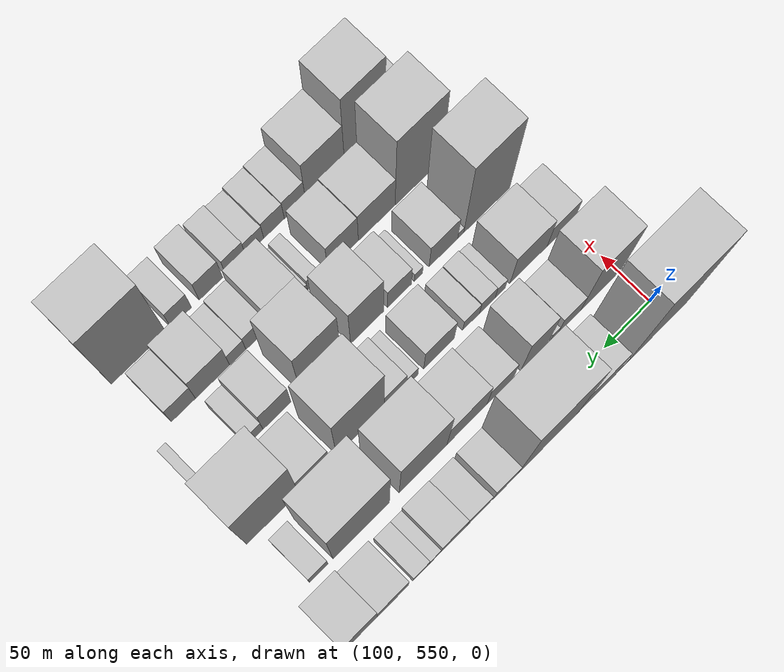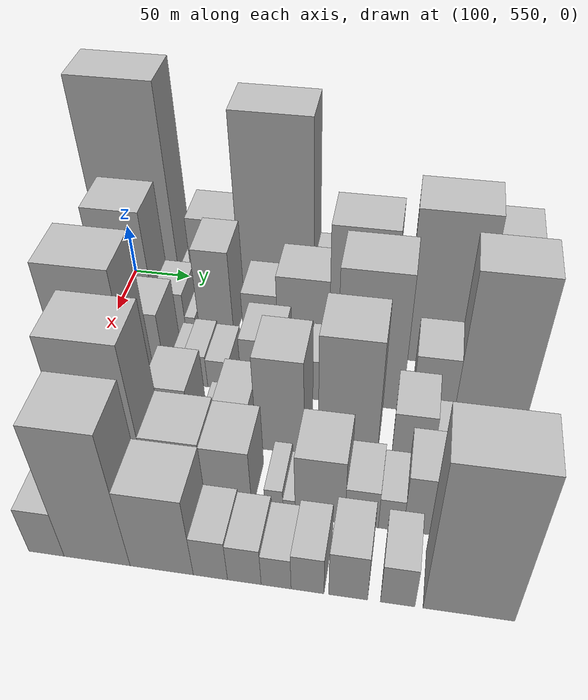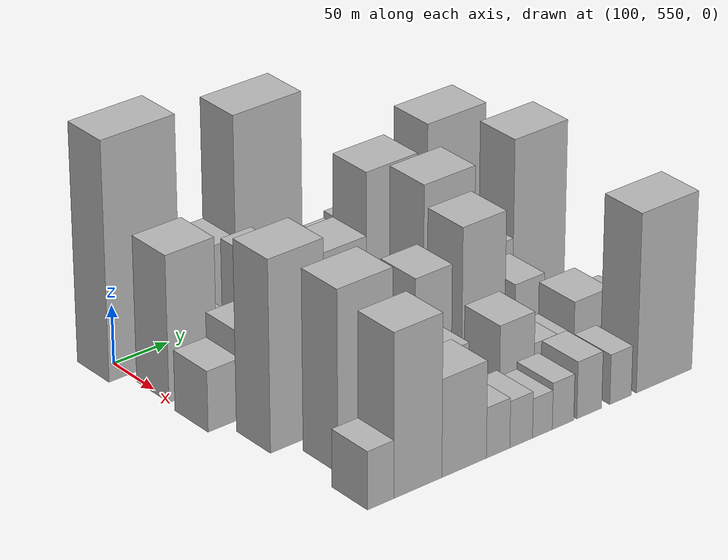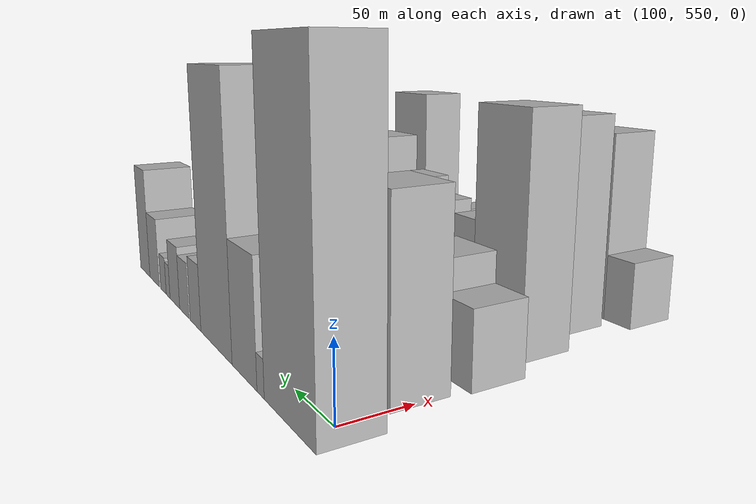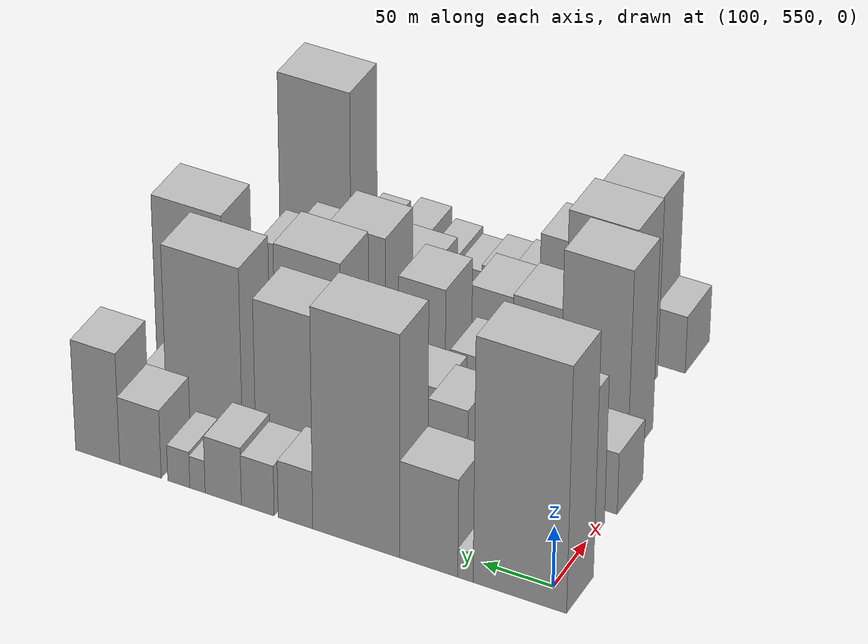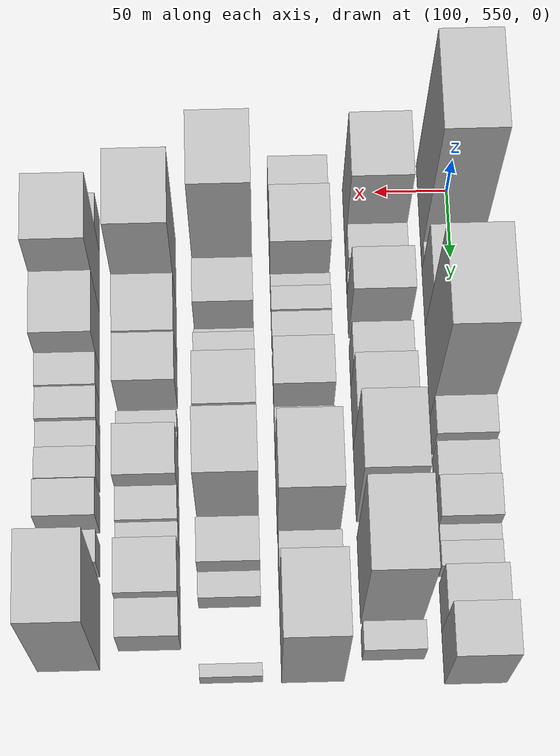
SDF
<sdf version="1.6">
 <world name="default">
  <model name="building_40">
   <static>1</static>
   <pose>100.0000 564.1771 0 0.000000 0.000000 0.000000</pose>
   <link name="link">
    <pose>0 0 100.50 0 0 0</pose>
    <collision name="collision"><geometry><box><size>40.0000 66.7965 201.0000</size></box></geometry></collision>
    <visual name="visual">
     <cast_shadows>0</cast_shadows>
     <geometry><box><size>40.0000 66.7965 201.0000</size></box></geometry>
     <material>
      <script>
       <uri>model://HANNAS_wall/materials/scripts</uri>
       <uri>model://HANNAS_wall/materials/textures</uri>
       <name>vrc/HANNAS_wall</name>
      </script>
     </material>
    </visual>
   </link>
  </model>
  <model name="building_41">
   <static>1</static>
   <pose>100.0000 603.0880 0 0.000000 0.000000 0.000000</pose>
   <link name="link">
    <pose>0 0 12.00 0 0 0</pose>
    <collision name="collision"><geometry><box><size>40.0000 11.0255 24.0000</size></box></geometry></collision>
    <visual name="visual">
     <cast_shadows>0</cast_shadows>
     <geometry><box><size>40.0000 11.0255 24.0000</size></box></geometry>
     <material>
      <script>
       <uri>model://HANNAS_wall/materials/scripts</uri>
       <uri>model://HANNAS_wall/materials/textures</uri>
       <name>vrc/HANNAS_wall</name>
      </script>
     </material>
    </visual>
   </link>
  </model>
  <model name="building_42">
   <static>1</static>
   <pose>100.0000 629.5832 0 0.000000 0.000000 0.000000</pose>
   <link name="link">
    <pose>0 0 40.50 0 0 0</pose>
    <collision name="collision"><geometry><box><size>40.0000 41.9648 81.0000</size></box></geometry></collision>
    <visual name="visual">
     <cast_shadows>0</cast_shadows>
     <geometry><box><size>40.0000 41.9648 81.0000</size></box></geometry>
     <material>
      <script>
       <uri>model://HANNAS_wall/materials/scripts</uri>
       <uri>model://HANNAS_wall/materials/textures</uri>
       <name>vrc/HANNAS_wall</name>
      </script>
     </material>
    </visual>
   </link>
  </model>
  <model name="building_43">
   <static>1</static>
   <pose>100.0000 682.4977 0 0.000000 0.000000 0.000000</pose>
   <link name="link">
    <pose>0 0 91.50 0 0 0</pose>
    <collision name="collision"><geometry><box><size>40.0000 63.8643 183.0000</size></box></geometry></collision>
    <visual name="visual">
     <cast_shadows>0</cast_shadows>
     <geometry><box><size>40.0000 63.8643 183.0000</size></box></geometry>
     <material>
      <script>
       <uri>model://HANNAS_wall/materials/scripts</uri>
       <uri>model://HANNAS_wall/materials/textures</uri>
       <name>vrc/HANNAS_wall</name>
      </script>
     </material>
    </visual>
   </link>
  </model>
  <model name="building_44">
   <static>1</static>
   <pose>100.0000 727.2137 0 0.000000 0.000000 0.000000</pose>
   <link name="link">
    <pose>0 0 24.00 0 0 0</pose>
    <collision name="collision"><geometry><box><size>40.0000 25.5676 48.0000</size></box></geometry></collision>
    <visual name="visual">
     <cast_shadows>0</cast_shadows>
     <geometry><box><size>40.0000 25.5676 48.0000</size></box></geometry>
     <material>
      <script>
       <uri>model://HANNAS_wall/materials/scripts</uri>
       <uri>model://HANNAS_wall/materials/textures</uri>
       <name>vrc/HANNAS_wall</name>
      </script>
     </material>
    </visual>
   </link>
  </model>
  <model name="building_45">
   <static>1</static>
   <pose>100.0000 755.2027 0 0.000000 0.000000 0.000000</pose>
   <link name="link">
    <pose>0 0 21.00 0 0 0</pose>
    <collision name="collision"><geometry><box><size>40.0000 24.4103 42.0000</size></box></geometry></collision>
    <visual name="visual">
     <cast_shadows>0</cast_shadows>
     <geometry><box><size>40.0000 24.4103 42.0000</size></box></geometry>
     <material>
      <script>
       <uri>model://HANNAS_wall/materials/scripts</uri>
       <uri>model://HANNAS_wall/materials/textures</uri>
       <name>vrc/HANNAS_wall</name>
      </script>
     </material>
    </visual>
   </link>
  </model>
  <model name="building_46">
   <static>1</static>
   <pose>100.0000 781.0198 0 0.000000 0.000000 0.000000</pose>
   <link name="link">
    <pose>0 0 24.00 0 0 0</pose>
    <collision name="collision"><geometry><box><size>40.0000 27.2238 48.0000</size></box></geometry></collision>
    <visual name="visual">
     <cast_shadows>0</cast_shadows>
     <geometry><box><size>40.0000 27.2238 48.0000</size></box></geometry>
     <material>
      <script>
       <uri>model://HANNAS_wall/materials/scripts</uri>
       <uri>model://HANNAS_wall/materials/textures</uri>
       <name>vrc/HANNAS_wall</name>
      </script>
     </material>
    </visual>
   </link>
  </model>
  <model name="building_47">
   <static>1</static>
   <pose>100.0000 800.3793 0 0.000000 0.000000 0.000000</pose>
   <link name="link">
    <pose>0 0 13.50 0 0 0</pose>
    <collision name="collision"><geometry><box><size>40.0000 11.4953 27.0000</size></box></geometry></collision>
    <visual name="visual">
     <cast_shadows>0</cast_shadows>
     <geometry><box><size>40.0000 11.4953 27.0000</size></box></geometry>
     <material>
      <script>
       <uri>model://HANNAS_wall/materials/scripts</uri>
       <uri>model://HANNAS_wall/materials/textures</uri>
       <name>vrc/HANNAS_wall</name>
      </script>
     </material>
    </visual>
   </link>
  </model>
  <model name="building_48">
   <static>1</static>
   <pose>100.0000 814.4550 0 0.000000 0.000000 0.000000</pose>
   <link name="link">
    <pose>0 0 15.00 0 0 0</pose>
    <collision name="collision"><geometry><box><size>40.0000 16.6561 30.0000</size></box></geometry></collision>
    <visual name="visual">
     <cast_shadows>0</cast_shadows>
     <geometry><box><size>40.0000 16.6561 30.0000</size></box></geometry>
     <material>
      <script>
       <uri>model://HANNAS_wall/materials/scripts</uri>
       <uri>model://HANNAS_wall/materials/textures</uri>
       <name>vrc/HANNAS_wall</name>
      </script>
     </material>
    </visual>
   </link>
  </model>
  <model name="building_49">
   <static>1</static>
   <pose>100.0000 843.5239 0 0.000000 0.000000 0.000000</pose>
   <link name="link">
    <pose>0 0 28.50 0 0 0</pose>
    <collision name="collision"><geometry><box><size>40.0000 31.4817 57.0000</size></box></geometry></collision>
    <visual name="visual">
     <cast_shadows>0</cast_shadows>
     <geometry><box><size>40.0000 31.4817 57.0000</size></box></geometry>
     <material>
      <script>
       <uri>model://HANNAS_wall/materials/scripts</uri>
       <uri>model://HANNAS_wall/materials/textures</uri>
       <name>vrc/HANNAS_wall</name>
      </script>
     </material>
    </visual>
   </link>
  </model>
  <model name="building_50">
   <static>1</static>
   <pose>100.0000 876.1330 0 0.000000 0.000000 0.000000</pose>
   <link name="link">
    <pose>0 0 46.50 0 0 0</pose>
    <collision name="collision"><geometry><box><size>40.0000 33.7363 93.0000</size></box></geometry></collision>
    <visual name="visual">
     <cast_shadows>0</cast_shadows>
     <geometry><box><size>40.0000 33.7363 93.0000</size></box></geometry>
     <material>
      <script>
       <uri>model://HANNAS_wall/materials/scripts</uri>
       <uri>model://HANNAS_wall/materials/textures</uri>
       <name>vrc/HANNAS_wall</name>
      </script>
     </material>
    </visual>
   </link>
  </model>
  <model name="building_90">
   <static>1</static>
   <pose>152.0000 569.6999 0 0.000000 0.000000 0.000000</pose>
   <link name="link">
    <pose>0 0 61.50 0 0 0</pose>
    <collision name="collision"><geometry><box><size>40.0000 44.5305 123.0000</size></box></geometry></collision>
    <visual name="visual">
     <cast_shadows>0</cast_shadows>
     <geometry><box><size>40.0000 44.5305 123.0000</size></box></geometry>
     <material>
      <script>
       <uri>model://HANNAS_wall/materials/scripts</uri>
       <uri>model://HANNAS_wall/materials/textures</uri>
       <name>vrc/HANNAS_wall</name>
      </script>
     </material>
    </visual>
   </link>
  </model>
  <model name="building_91">
   <static>1</static>
   <pose>152.0000 604.1638 0 0.000000 0.000000 0.000000</pose>
   <link name="link">
    <pose>0 0 22.50 0 0 0</pose>
    <collision name="collision"><geometry><box><size>40.0000 24.3972 45.0000</size></box></geometry></collision>
    <visual name="visual">
     <cast_shadows>0</cast_shadows>
     <geometry><box><size>40.0000 24.3972 45.0000</size></box></geometry>
     <material>
      <script>
       <uri>model://HANNAS_wall/materials/scripts</uri>
       <uri>model://HANNAS_wall/materials/textures</uri>
       <name>vrc/HANNAS_wall</name>
      </script>
     </material>
    </visual>
   </link>
  </model>
  <model name="building_92">
   <static>1</static>
   <pose>152.0000 620.6208 0 0.000000 0.000000 0.000000</pose>
   <link name="link">
    <pose>0 0 10.50 0 0 0</pose>
    <collision name="collision"><geometry><box><size>40.0000 8.5168 21.0000</size></box></geometry></collision>
    <visual name="visual">
     <cast_shadows>0</cast_shadows>
     <geometry><box><size>40.0000 8.5168 21.0000</size></box></geometry>
     <material>
      <script>
       <uri>model://HANNAS_wall/materials/scripts</uri>
       <uri>model://HANNAS_wall/materials/textures</uri>
       <name>vrc/HANNAS_wall</name>
      </script>
     </material>
    </visual>
   </link>
  </model>
  <model name="building_93">
   <static>1</static>
   <pose>152.0000 642.2037 0 0.000000 0.000000 0.000000</pose>
   <link name="link">
    <pose>0 0 46.50 0 0 0</pose>
    <collision name="collision"><geometry><box><size>40.0000 28.6489 93.0000</size></box></geometry></collision>
    <visual name="visual">
     <cast_shadows>0</cast_shadows>
     <geometry><box><size>40.0000 28.6489 93.0000</size></box></geometry>
     <material>
      <script>
       <uri>model://HANNAS_wall/materials/scripts</uri>
       <uri>model://HANNAS_wall/materials/textures</uri>
       <name>vrc/HANNAS_wall</name>
      </script>
     </material>
    </visual>
   </link>
  </model>
  <model name="building_94">
   <static>1</static>
   <pose>152.0000 678.6674 0 0.000000 0.000000 0.000000</pose>
   <link name="link">
    <pose>0 0 27.00 0 0 0</pose>
    <collision name="collision"><geometry><box><size>40.0000 28.2787 54.0000</size></box></geometry></collision>
    <visual name="visual">
     <cast_shadows>0</cast_shadows>
     <geometry><box><size>40.0000 28.2787 54.0000</size></box></geometry>
     <material>
      <script>
       <uri>model://HANNAS_wall/materials/scripts</uri>
       <uri>model://HANNAS_wall/materials/textures</uri>
       <name>vrc/HANNAS_wall</name>
      </script>
     </material>
    </visual>
   </link>
  </model>
  <model name="building_95">
   <static>1</static>
   <pose>152.0000 713.8421 0 0.000000 0.000000 0.000000</pose>
   <link name="link">
    <pose>0 0 37.50 0 0 0</pose>
    <collision name="collision"><geometry><box><size>40.0000 42.0707 75.0000</size></box></geometry></collision>
    <visual name="visual">
     <cast_shadows>0</cast_shadows>
     <geometry><box><size>40.0000 42.0707 75.0000</size></box></geometry>
     <material>
      <script>
       <uri>model://HANNAS_wall/materials/scripts</uri>
       <uri>model://HANNAS_wall/materials/textures</uri>
       <name>vrc/HANNAS_wall</name>
      </script>
     </material>
    </visual>
   </link>
  </model>
  <model name="building_96">
   <static>1</static>
   <pose>152.0000 759.8051 0 0.000000 0.000000 0.000000</pose>
   <link name="link">
    <pose>0 0 64.50 0 0 0</pose>
    <collision name="collision"><geometry><box><size>40.0000 49.8551 129.0000</size></box></geometry></collision>
    <visual name="visual">
     <cast_shadows>0</cast_shadows>
     <geometry><box><size>40.0000 49.8551 129.0000</size></box></geometry>
     <material>
      <script>
       <uri>model://HANNAS_wall/materials/scripts</uri>
       <uri>model://HANNAS_wall/materials/textures</uri>
       <name>vrc/HANNAS_wall</name>
      </script>
     </material>
    </visual>
   </link>
  </model>
  <model name="building_97">
   <static>1</static>
   <pose>152.0000 823.6091 0 0.000000 0.000000 0.000000</pose>
   <link name="link">
    <pose>0 0 75.00 0 0 0</pose>
    <collision name="collision"><geometry><box><size>40.0000 57.7530 150.0000</size></box></geometry></collision>
    <visual name="visual">
     <cast_shadows>0</cast_shadows>
     <geometry><box><size>40.0000 57.7530 150.0000</size></box></geometry>
     <material>
      <script>
       <uri>model://HANNAS_wall/materials/scripts</uri>
       <uri>model://HANNAS_wall/materials/textures</uri>
       <name>vrc/HANNAS_wall</name>
      </script>
     </material>
    </visual>
   </link>
  </model>
  <model name="building_98">
   <static>1</static>
   <pose>152.0000 866.8924 0 0.000000 0.000000 0.000000</pose>
   <link name="link">
    <pose>0 0 16.50 0 0 0</pose>
    <collision name="collision"><geometry><box><size>40.0000 18.8136 33.0000</size></box></geometry></collision>
    <visual name="visual">
     <cast_shadows>0</cast_shadows>
     <geometry><box><size>40.0000 18.8136 33.0000</size></box></geometry>
     <material>
      <script>
       <uri>model://HANNAS_wall/materials/scripts</uri>
       <uri>model://HANNAS_wall/materials/textures</uri>
       <name>vrc/HANNAS_wall</name>
      </script>
     </material>
    </visual>
   </link>
  </model>
  <model name="building_140">
   <static>1</static>
   <pose>204.0000 558.8875 0 0.000000 0.000000 0.000000</pose>
   <link name="link">
    <pose>0 0 25.50 0 0 0</pose>
    <collision name="collision"><geometry><box><size>40.0000 29.9798 51.0000</size></box></geometry></collision>
    <visual name="visual">
     <cast_shadows>0</cast_shadows>
     <geometry><box><size>40.0000 29.9798 51.0000</size></box></geometry>
     <material>
      <script>
       <uri>model://HANNAS_wall/materials/scripts</uri>
       <uri>model://HANNAS_wall/materials/textures</uri>
       <name>vrc/HANNAS_wall</name>
      </script>
     </material>
    </visual>
   </link>
  </model>
  <model name="building_141">
   <static>1</static>
   <pose>204.0000 594.1034 0 0.000000 0.000000 0.000000</pose>
   <link name="link">
    <pose>0 0 36.00 0 0 0</pose>
    <collision name="collision"><geometry><box><size>40.0000 40.4520 72.0000</size></box></geometry></collision>
    <visual name="visual">
     <cast_shadows>0</cast_shadows>
     <geometry><box><size>40.0000 40.4520 72.0000</size></box></geometry>
     <material>
      <script>
       <uri>model://HANNAS_wall/materials/scripts</uri>
       <uri>model://HANNAS_wall/materials/textures</uri>
       <name>vrc/HANNAS_wall</name>
      </script>
     </material>
    </visual>
   </link>
  </model>
  <model name="building_142">
   <static>1</static>
   <pose>204.0000 624.7492 0 0.000000 0.000000 0.000000</pose>
   <link name="link">
    <pose>0 0 13.50 0 0 0</pose>
    <collision name="collision"><geometry><box><size>40.0000 10.8395 27.0000</size></box></geometry></collision>
    <visual name="visual">
     <cast_shadows>0</cast_shadows>
     <geometry><box><size>40.0000 10.8395 27.0000</size></box></geometry>
     <material>
      <script>
       <uri>model://HANNAS_wall/materials/scripts</uri>
       <uri>model://HANNAS_wall/materials/textures</uri>
       <name>vrc/HANNAS_wall</name>
      </script>
     </material>
    </visual>
   </link>
  </model>
  <model name="building_143">
   <static>1</static>
   <pose>204.0000 638.6174 0 0.000000 0.000000 0.000000</pose>
   <link name="link">
    <pose>0 0 16.50 0 0 0</pose>
    <collision name="collision"><geometry><box><size>40.0000 16.8969 33.0000</size></box></geometry></collision>
    <visual name="visual">
     <cast_shadows>0</cast_shadows>
     <geometry><box><size>40.0000 16.8969 33.0000</size></box></geometry>
     <material>
      <script>
       <uri>model://HANNAS_wall/materials/scripts</uri>
       <uri>model://HANNAS_wall/materials/textures</uri>
       <name>vrc/HANNAS_wall</name>
      </script>
     </material>
    </visual>
   </link>
  </model>
  <model name="building_144">
   <static>1</static>
   <pose>204.0000 656.0647 0 0.000000 0.000000 0.000000</pose>
   <link name="link">
    <pose>0 0 15.00 0 0 0</pose>
    <collision name="collision"><geometry><box><size>40.0000 17.9976 30.0000</size></box></geometry></collision>
    <visual name="visual">
     <cast_shadows>0</cast_shadows>
     <geometry><box><size>40.0000 17.9976 30.0000</size></box></geometry>
     <material>
      <script>
       <uri>model://HANNAS_wall/materials/scripts</uri>
       <uri>model://HANNAS_wall/materials/textures</uri>
       <name>vrc/HANNAS_wall</name>
      </script>
     </material>
    </visual>
   </link>
  </model>
  <model name="building_145">
   <static>1</static>
   <pose>204.0000 690.3027 0 0.000000 0.000000 0.000000</pose>
   <link name="link">
    <pose>0 0 28.50 0 0 0</pose>
    <collision name="collision"><geometry><box><size>40.0000 32.4785 57.0000</size></box></geometry></collision>
    <visual name="visual">
     <cast_shadows>0</cast_shadows>
     <geometry><box><size>40.0000 32.4785 57.0000</size></box></geometry>
     <material>
      <script>
       <uri>model://HANNAS_wall/materials/scripts</uri>
       <uri>model://HANNAS_wall/materials/textures</uri>
       <name>vrc/HANNAS_wall</name>
      </script>
     </material>
    </visual>
   </link>
  </model>
  <model name="building_146">
   <static>1</static>
   <pose>204.0000 718.4819 0 0.000000 0.000000 0.000000</pose>
   <link name="link">
    <pose>0 0 13.50 0 0 0</pose>
    <collision name="collision"><geometry><box><size>40.0000 11.8799 27.0000</size></box></geometry></collision>
    <visual name="visual">
     <cast_shadows>0</cast_shadows>
     <geometry><box><size>40.0000 11.8799 27.0000</size></box></geometry>
     <material>
      <script>
       <uri>model://HANNAS_wall/materials/scripts</uri>
       <uri>model://HANNAS_wall/materials/textures</uri>
       <name>vrc/HANNAS_wall</name>
      </script>
     </material>
    </visual>
   </link>
  </model>
  <model name="building_147">
   <static>1</static>
   <pose>204.0000 736.1165 0 0.000000 0.000000 0.000000</pose>
   <link name="link">
    <pose>0 0 21.00 0 0 0</pose>
    <collision name="collision"><geometry><box><size>40.0000 23.3892 42.0000</size></box></geometry></collision>
    <visual name="visual">
     <cast_shadows>0</cast_shadows>
     <geometry><box><size>40.0000 23.3892 42.0000</size></box></geometry>
     <material>
      <script>
       <uri>model://HANNAS_wall/materials/scripts</uri>
       <uri>model://HANNAS_wall/materials/textures</uri>
       <name>vrc/HANNAS_wall</name>
      </script>
     </material>
    </visual>
   </link>
  </model>
  <model name="building_148">
   <static>1</static>
   <pose>204.0000 772.6777 0 0.000000 0.000000 0.000000</pose>
   <link name="link">
    <pose>0 0 67.50 0 0 0</pose>
    <collision name="collision"><geometry><box><size>40.0000 49.7332 135.0000</size></box></geometry></collision>
    <visual name="visual">
     <cast_shadows>0</cast_shadows>
     <geometry><box><size>40.0000 49.7332 135.0000</size></box></geometry>
     <material>
      <script>
       <uri>model://HANNAS_wall/materials/scripts</uri>
       <uri>model://HANNAS_wall/materials/textures</uri>
       <name>vrc/HANNAS_wall</name>
      </script>
     </material>
    </visual>
   </link>
  </model>
  <model name="building_149">
   <static>1</static>
   <pose>204.0000 820.5145 0 0.000000 0.000000 0.000000</pose>
   <link name="link">
    <pose>0 0 30.00 0 0 0</pose>
    <collision name="collision"><geometry><box><size>40.0000 31.9405 60.0000</size></box></geometry></collision>
    <visual name="visual">
     <cast_shadows>0</cast_shadows>
     <geometry><box><size>40.0000 31.9405 60.0000</size></box></geometry>
     <material>
      <script>
       <uri>model://HANNAS_wall/materials/scripts</uri>
       <uri>model://HANNAS_wall/materials/textures</uri>
       <name>vrc/HANNAS_wall</name>
      </script>
     </material>
    </visual>
   </link>
  </model>
  <model name="building_150">
   <static>1</static>
   <pose>204.0000 862.9094 0 0.000000 0.000000 0.000000</pose>
   <link name="link">
    <pose>0 0 72.00 0 0 0</pose>
    <collision name="collision"><geometry><box><size>40.0000 52.8493 144.0000</size></box></geometry></collision>
    <visual name="visual">
     <cast_shadows>0</cast_shadows>
     <geometry><box><size>40.0000 52.8493 144.0000</size></box></geometry>
     <material>
      <script>
       <uri>model://HANNAS_wall/materials/scripts</uri>
       <uri>model://HANNAS_wall/materials/textures</uri>
       <name>vrc/HANNAS_wall</name>
      </script>
     </material>
    </visual>
   </link>
  </model>
  <model name="building_191">
   <static>1</static>
   <pose>256.0000 585.6969 0 0.000000 0.000000 0.000000</pose>
   <link name="link">
    <pose>0 0 79.50 0 0 0</pose>
    <collision name="collision"><geometry><box><size>40.0000 50.0282 159.0000</size></box></geometry></collision>
    <visual name="visual">
     <cast_shadows>0</cast_shadows>
     <geometry><box><size>40.0000 50.0282 159.0000</size></box></geometry>
     <material>
      <script>
       <uri>model://HANNAS_wall/materials/scripts</uri>
       <uri>model://HANNAS_wall/materials/textures</uri>
       <name>vrc/HANNAS_wall</name>
      </script>
     </material>
    </visual>
   </link>
  </model>
  <model name="building_192">
   <static>1</static>
   <pose>256.0000 613.9818 0 0.000000 0.000000 0.000000</pose>
   <link name="link">
    <pose>0 0 7.50 0 0 0</pose>
    <collision name="collision"><geometry><box><size>40.0000 6.5415 15.0000</size></box></geometry></collision>
    <visual name="visual">
     <cast_shadows>0</cast_shadows>
     <geometry><box><size>40.0000 6.5415 15.0000</size></box></geometry>
     <material>
      <script>
       <uri>model://HANNAS_wall/materials/scripts</uri>
       <uri>model://HANNAS_wall/materials/textures</uri>
       <name>vrc/HANNAS_wall</name>
      </script>
     </material>
    </visual>
   </link>
  </model>
  <model name="building_193">
   <static>1</static>
   <pose>256.0000 632.5971 0 0.000000 0.000000 0.000000</pose>
   <link name="link">
    <pose>0 0 27.00 0 0 0</pose>
    <collision name="collision"><geometry><box><size>40.0000 30.6892 54.0000</size></box></geometry></collision>
    <visual name="visual">
     <cast_shadows>0</cast_shadows>
     <geometry><box><size>40.0000 30.6892 54.0000</size></box></geometry>
     <material>
      <script>
       <uri>model://HANNAS_wall/materials/scripts</uri>
       <uri>model://HANNAS_wall/materials/textures</uri>
       <name>vrc/HANNAS_wall</name>
      </script>
     </material>
    </visual>
   </link>
  </model>
  <model name="building_194">
   <static>1</static>
   <pose>256.0000 659.4112 0 0.000000 0.000000 0.000000</pose>
   <link name="link">
    <pose>0 0 10.50 0 0 0</pose>
    <collision name="collision"><geometry><box><size>40.0000 8.9390 21.0000</size></box></geometry></collision>
    <visual name="visual">
     <cast_shadows>0</cast_shadows>
     <geometry><box><size>40.0000 8.9390 21.0000</size></box></geometry>
     <material>
      <script>
       <uri>model://HANNAS_wall/materials/scripts</uri>
       <uri>model://HANNAS_wall/materials/textures</uri>
       <name>vrc/HANNAS_wall</name>
      </script>
     </material>
    </visual>
   </link>
  </model>
  <model name="building_195">
   <static>1</static>
   <pose>256.0000 679.5983 0 0.000000 0.000000 0.000000</pose>
   <link name="link">
    <pose>0 0 24.00 0 0 0</pose>
    <collision name="collision"><geometry><box><size>40.0000 25.4351 48.0000</size></box></geometry></collision>
    <visual name="visual">
     <cast_shadows>0</cast_shadows>
     <geometry><box><size>40.0000 25.4351 48.0000</size></box></geometry>
     <material>
      <script>
       <uri>model://HANNAS_wall/materials/scripts</uri>
       <uri>model://HANNAS_wall/materials/textures</uri>
       <name>vrc/HANNAS_wall</name>
      </script>
     </material>
    </visual>
   </link>
  </model>
  <model name="building_196">
   <static>1</static>
   <pose>256.0000 713.8268 0 0.000000 0.000000 0.000000</pose>
   <link name="link">
    <pose>0 0 48.00 0 0 0</pose>
    <collision name="collision"><geometry><box><size>40.0000 35.0218 96.0000</size></box></geometry></collision>
    <visual name="visual">
     <cast_shadows>0</cast_shadows>
     <geometry><box><size>40.0000 35.0218 96.0000</size></box></geometry>
     <material>
      <script>
       <uri>model://HANNAS_wall/materials/scripts</uri>
       <uri>model://HANNAS_wall/materials/textures</uri>
       <name>vrc/HANNAS_wall</name>
      </script>
     </material>
    </visual>
   </link>
  </model>
  <model name="building_197">
   <static>1</static>
   <pose>256.0000 762.3632 0 0.000000 0.000000 0.000000</pose>
   <link name="link">
    <pose>0 0 61.50 0 0 0</pose>
    <collision name="collision"><geometry><box><size>40.0000 42.0511 123.0000</size></box></geometry></collision>
    <visual name="visual">
     <cast_shadows>0</cast_shadows>
     <geometry><box><size>40.0000 42.0511 123.0000</size></box></geometry>
     <material>
      <script>
       <uri>model://HANNAS_wall/materials/scripts</uri>
       <uri>model://HANNAS_wall/materials/textures</uri>
       <name>vrc/HANNAS_wall</name>
      </script>
     </material>
    </visual>
   </link>
  </model>
  <model name="building_198">
   <static>1</static>
   <pose>256.0000 807.8912 0 0.000000 0.000000 0.000000</pose>
   <link name="link">
    <pose>0 0 28.50 0 0 0</pose>
    <collision name="collision"><geometry><box><size>40.0000 29.0049 57.0000</size></box></geometry></collision>
    <visual name="visual">
     <cast_shadows>0</cast_shadows>
     <geometry><box><size>40.0000 29.0049 57.0000</size></box></geometry>
     <material>
      <script>
       <uri>model://HANNAS_wall/materials/scripts</uri>
       <uri>model://HANNAS_wall/materials/textures</uri>
       <name>vrc/HANNAS_wall</name>
      </script>
     </material>
    </visual>
   </link>
  </model>
  <model name="building_199">
   <static>1</static>
   <pose>256.0000 830.8741 0 0.000000 0.000000 0.000000</pose>
   <link name="link">
    <pose>0 0 15.00 0 0 0</pose>
    <collision name="collision"><geometry><box><size>40.0000 16.9607 30.0000</size></box></geometry></collision>
    <visual name="visual">
     <cast_shadows>0</cast_shadows>
     <geometry><box><size>40.0000 16.9607 30.0000</size></box></geometry>
     <material>
      <script>
       <uri>model://HANNAS_wall/materials/scripts</uri>
       <uri>model://HANNAS_wall/materials/textures</uri>
       <name>vrc/HANNAS_wall</name>
      </script>
     </material>
    </visual>
   </link>
  </model>
  <model name="building_200">
   <static>1</static>
   <pose>256.0000 884.1530 0 0.000000 0.000000 0.000000</pose>
   <link name="link">
    <pose>0 0 10.50 0 0 0</pose>
    <collision name="collision"><geometry><box><size>40.0000 8.5324 21.0000</size></box></geometry></collision>
    <visual name="visual">
     <cast_shadows>0</cast_shadows>
     <geometry><box><size>40.0000 8.5324 21.0000</size></box></geometry>
     <material>
      <script>
       <uri>model://HANNAS_wall/materials/scripts</uri>
       <uri>model://HANNAS_wall/materials/textures</uri>
       <name>vrc/HANNAS_wall</name>
      </script>
     </material>
    </visual>
   </link>
  </model>
  <model name="building_242">
   <static>1</static>
   <pose>308.0000 606.5811 0 0.000000 0.000000 0.000000</pose>
   <link name="link">
    <pose>0 0 75.00 0 0 0</pose>
    <collision name="collision"><geometry><box><size>40.0000 50.7069 150.0000</size></box></geometry></collision>
    <visual name="visual">
     <cast_shadows>0</cast_shadows>
     <geometry><box><size>40.0000 50.7069 150.0000</size></box></geometry>
     <material>
      <script>
       <uri>model://HANNAS_wall/materials/scripts</uri>
       <uri>model://HANNAS_wall/materials/textures</uri>
       <name>vrc/HANNAS_wall</name>
      </script>
     </material>
    </visual>
   </link>
  </model>
  <model name="building_243">
   <static>1</static>
   <pose>308.0000 651.6000 0 0.000000 0.000000 0.000000</pose>
   <link name="link">
    <pose>0 0 33.00 0 0 0</pose>
    <collision name="collision"><geometry><box><size>40.0000 39.3308 66.0000</size></box></geometry></collision>
    <visual name="visual">
     <cast_shadows>0</cast_shadows>
     <geometry><box><size>40.0000 39.3308 66.0000</size></box></geometry>
     <material>
      <script>
       <uri>model://HANNAS_wall/materials/scripts</uri>
       <uri>model://HANNAS_wall/materials/textures</uri>
       <name>vrc/HANNAS_wall</name>
      </script>
     </material>
    </visual>
   </link>
  </model>
  <model name="building_244">
   <static>1</static>
   <pose>308.0000 687.5106 0 0.000000 0.000000 0.000000</pose>
   <link name="link">
    <pose>0 0 31.50 0 0 0</pose>
    <collision name="collision"><geometry><box><size>40.0000 32.4905 63.0000</size></box></geometry></collision>
    <visual name="visual">
     <cast_shadows>0</cast_shadows>
     <geometry><box><size>40.0000 32.4905 63.0000</size></box></geometry>
     <material>
      <script>
       <uri>model://HANNAS_wall/materials/scripts</uri>
       <uri>model://HANNAS_wall/materials/textures</uri>
       <name>vrc/HANNAS_wall</name>
      </script>
     </material>
    </visual>
   </link>
  </model>
  <model name="building_245">
   <static>1</static>
   <pose>308.0000 718.9356 0 0.000000 0.000000 0.000000</pose>
   <link name="link">
    <pose>0 0 13.50 0 0 0</pose>
    <collision name="collision"><geometry><box><size>40.0000 12.3596 27.0000</size></box></geometry></collision>
    <visual name="visual">
     <cast_shadows>0</cast_shadows>
     <geometry><box><size>40.0000 12.3596 27.0000</size></box></geometry>
     <material>
      <script>
       <uri>model://HANNAS_wall/materials/scripts</uri>
       <uri>model://HANNAS_wall/materials/textures</uri>
       <name>vrc/HANNAS_wall</name>
      </script>
     </material>
    </visual>
   </link>
  </model>
  <model name="building_246">
   <static>1</static>
   <pose>308.0000 729.2502 0 0.000000 0.000000 0.000000</pose>
   <link name="link">
    <pose>0 0 9.00 0 0 0</pose>
    <collision name="collision"><geometry><box><size>40.0000 8.2696 18.0000</size></box></geometry></collision>
    <visual name="visual">
     <cast_shadows>0</cast_shadows>
     <geometry><box><size>40.0000 8.2696 18.0000</size></box></geometry>
     <material>
      <script>
       <uri>model://HANNAS_wall/materials/scripts</uri>
       <uri>model://HANNAS_wall/materials/textures</uri>
       <name>vrc/HANNAS_wall</name>
      </script>
     </material>
    </visual>
   </link>
  </model>
  <model name="building_247">
   <static>1</static>
   <pose>308.0000 750.2485 0 0.000000 0.000000 0.000000</pose>
   <link name="link">
    <pose>0 0 33.00 0 0 0</pose>
    <collision name="collision"><geometry><box><size>40.0000 33.7269 66.0000</size></box></geometry></collision>
    <visual name="visual">
     <cast_shadows>0</cast_shadows>
     <geometry><box><size>40.0000 33.7269 66.0000</size></box></geometry>
     <material>
      <script>
       <uri>model://HANNAS_wall/materials/scripts</uri>
       <uri>model://HANNAS_wall/materials/textures</uri>
       <name>vrc/HANNAS_wall</name>
      </script>
     </material>
    </visual>
   </link>
  </model>
  <model name="building_248">
   <static>1</static>
   <pose>308.0000 778.2965 0 0.000000 0.000000 0.000000</pose>
   <link name="link">
    <pose>0 0 19.50 0 0 0</pose>
    <collision name="collision"><geometry><box><size>40.0000 22.3692 39.0000</size></box></geometry></collision>
    <visual name="visual">
     <cast_shadows>0</cast_shadows>
     <geometry><box><size>40.0000 22.3692 39.0000</size></box></geometry>
     <material>
      <script>
       <uri>model://HANNAS_wall/materials/scripts</uri>
       <uri>model://HANNAS_wall/materials/textures</uri>
       <name>vrc/HANNAS_wall</name>
      </script>
     </material>
    </visual>
   </link>
  </model>
  <model name="building_249">
   <static>1</static>
   <pose>308.0000 797.8351 0 0.000000 0.000000 0.000000</pose>
   <link name="link">
    <pose>0 0 16.50 0 0 0</pose>
    <collision name="collision"><geometry><box><size>40.0000 16.7080 33.0000</size></box></geometry></collision>
    <visual name="visual">
     <cast_shadows>0</cast_shadows>
     <geometry><box><size>40.0000 16.7080 33.0000</size></box></geometry>
     <material>
      <script>
       <uri>model://HANNAS_wall/materials/scripts</uri>
       <uri>model://HANNAS_wall/materials/textures</uri>
       <name>vrc/HANNAS_wall</name>
      </script>
     </material>
    </visual>
   </link>
  </model>
  <model name="building_250">
   <static>1</static>
   <pose>308.0000 823.7986 0 0.000000 0.000000 0.000000</pose>
   <link name="link">
    <pose>0 0 30.00 0 0 0</pose>
    <collision name="collision"><geometry><box><size>40.0000 35.2189 60.0000</size></box></geometry></collision>
    <visual name="visual">
     <cast_shadows>0</cast_shadows>
     <geometry><box><size>40.0000 35.2189 60.0000</size></box></geometry>
     <material>
      <script>
       <uri>model://HANNAS_wall/materials/scripts</uri>
       <uri>model://HANNAS_wall/materials/textures</uri>
       <name>vrc/HANNAS_wall</name>
      </script>
     </material>
    </visual>
   </link>
  </model>
  <model name="building_251">
   <static>1</static>
   <pose>308.0000 853.7837 0 0.000000 0.000000 0.000000</pose>
   <link name="link">
    <pose>0 0 22.50 0 0 0</pose>
    <collision name="collision"><geometry><box><size>40.0000 24.7515 45.0000</size></box></geometry></collision>
    <visual name="visual">
     <cast_shadows>0</cast_shadows>
     <geometry><box><size>40.0000 24.7515 45.0000</size></box></geometry>
     <material>
      <script>
       <uri>model://HANNAS_wall/materials/scripts</uri>
       <uri>model://HANNAS_wall/materials/textures</uri>
       <name>vrc/HANNAS_wall</name>
      </script>
     </material>
    </visual>
   </link>
  </model>
  <model name="building_295">
   <static>1</static>
   <pose>360.0000 578.0556 0 0.000000 0.000000 0.000000</pose>
   <link name="link">
    <pose>0 0 24.00 0 0 0</pose>
    <collision name="collision"><geometry><box><size>40.0000 24.0481 48.0000</size></box></geometry></collision>
    <visual name="visual">
     <cast_shadows>0</cast_shadows>
     <geometry><box><size>40.0000 24.0481 48.0000</size></box></geometry>
     <material>
      <script>
       <uri>model://HANNAS_wall/materials/scripts</uri>
       <uri>model://HANNAS_wall/materials/textures</uri>
       <name>vrc/HANNAS_wall</name>
      </script>
     </material>
    </visual>
   </link>
  </model>
  <model name="building_296">
   <static>1</static>
   <pose>360.0000 612.2820 0 0.000000 0.000000 0.000000</pose>
   <link name="link">
    <pose>0 0 67.50 0 0 0</pose>
    <collision name="collision"><geometry><box><size>40.0000 44.4048 135.0000</size></box></geometry></collision>
    <visual name="visual">
     <cast_shadows>0</cast_shadows>
     <geometry><box><size>40.0000 44.4048 135.0000</size></box></geometry>
     <material>
      <script>
       <uri>model://HANNAS_wall/materials/scripts</uri>
       <uri>model://HANNAS_wall/materials/textures</uri>
       <name>vrc/HANNAS_wall</name>
      </script>
     </material>
    </visual>
   </link>
  </model>
  <model name="building_297">
   <static>1</static>
   <pose>360.0000 655.3814 0 0.000000 0.000000 0.000000</pose>
   <link name="link">
    <pose>0 0 40.50 0 0 0</pose>
    <collision name="collision"><geometry><box><size>40.0000 41.7939 81.0000</size></box></geometry></collision>
    <visual name="visual">
     <cast_shadows>0</cast_shadows>
     <geometry><box><size>40.0000 41.7939 81.0000</size></box></geometry>
     <material>
      <script>
       <uri>model://HANNAS_wall/materials/scripts</uri>
       <uri>model://HANNAS_wall/materials/textures</uri>
       <name>vrc/HANNAS_wall</name>
      </script>
     </material>
    </visual>
   </link>
  </model>
  <model name="building_298">
   <static>1</static>
   <pose>360.0000 687.4409 0 0.000000 0.000000 0.000000</pose>
   <link name="link">
    <pose>0 0 21.00 0 0 0</pose>
    <collision name="collision"><geometry><box><size>40.0000 22.3252 42.0000</size></box></geometry></collision>
    <visual name="visual">
     <cast_shadows>0</cast_shadows>
     <geometry><box><size>40.0000 22.3252 42.0000</size></box></geometry>
     <material>
      <script>
       <uri>model://HANNAS_wall/materials/scripts</uri>
       <uri>model://HANNAS_wall/materials/textures</uri>
       <name>vrc/HANNAS_wall</name>
      </script>
     </material>
    </visual>
   </link>
  </model>
  <model name="building_299">
   <static>1</static>
   <pose>360.0000 709.4759 0 0.000000 0.000000 0.000000</pose>
   <link name="link">
    <pose>0 0 19.50 0 0 0</pose>
    <collision name="collision"><geometry><box><size>40.0000 21.7448 39.0000</size></box></geometry></collision>
    <visual name="visual">
     <cast_shadows>0</cast_shadows>
     <geometry><box><size>40.0000 21.7448 39.0000</size></box></geometry>
     <material>
      <script>
       <uri>model://HANNAS_wall/materials/scripts</uri>
       <uri>model://HANNAS_wall/materials/textures</uri>
       <name>vrc/HANNAS_wall</name>
      </script>
     </material>
    </visual>
   </link>
  </model>
  <model name="building_300">
   <static>1</static>
   <pose>360.0000 729.9254 0 0.000000 0.000000 0.000000</pose>
   <link name="link">
    <pose>0 0 16.50 0 0 0</pose>
    <collision name="collision"><geometry><box><size>40.0000 19.1543 33.0000</size></box></geometry></collision>
    <visual name="visual">
     <cast_shadows>0</cast_shadows>
     <geometry><box><size>40.0000 19.1543 33.0000</size></box></geometry>
     <material>
      <script>
       <uri>model://HANNAS_wall/materials/scripts</uri>
       <uri>model://HANNAS_wall/materials/textures</uri>
       <name>vrc/HANNAS_wall</name>
      </script>
     </material>
    </visual>
   </link>
  </model>
  <model name="building_301">
   <static>1</static>
   <pose>360.0000 749.9375 0 0.000000 0.000000 0.000000</pose>
   <link name="link">
    <pose>0 0 19.50 0 0 0</pose>
    <collision name="collision"><geometry><box><size>40.0000 20.8698 39.0000</size></box></geometry></collision>
    <visual name="visual">
     <cast_shadows>0</cast_shadows>
     <geometry><box><size>40.0000 20.8698 39.0000</size></box></geometry>
     <material>
      <script>
       <uri>model://HANNAS_wall/materials/scripts</uri>
       <uri>model://HANNAS_wall/materials/textures</uri>
       <name>vrc/HANNAS_wall</name>
      </script>
     </material>
    </visual>
   </link>
  </model>
  <model name="building_302">
   <static>1</static>
   <pose>360.0000 775.5871 0 0.000000 0.000000 0.000000</pose>
   <link name="link">
    <pose>0 0 24.00 0 0 0</pose>
    <collision name="collision"><geometry><box><size>40.0000 24.4294 48.0000</size></box></geometry></collision>
    <visual name="visual">
     <cast_shadows>0</cast_shadows>
     <geometry><box><size>40.0000 24.4294 48.0000</size></box></geometry>
     <material>
      <script>
       <uri>model://HANNAS_wall/materials/scripts</uri>
       <uri>model://HANNAS_wall/materials/textures</uri>
       <name>vrc/HANNAS_wall</name>
      </script>
     </material>
    </visual>
   </link>
  </model>
  <model name="building_303">
   <static>1</static>
   <pose>360.0000 806.5114 0 0.000000 0.000000 0.000000</pose>
   <link name="link">
    <pose>0 0 21.00 0 0 0</pose>
    <collision name="collision"><geometry><box><size>40.0000 21.4192 42.0000</size></box></geometry></collision>
    <visual name="visual">
     <cast_shadows>0</cast_shadows>
     <geometry><box><size>40.0000 21.4192 42.0000</size></box></geometry>
     <material>
      <script>
       <uri>model://HANNAS_wall/materials/scripts</uri>
       <uri>model://HANNAS_wall/materials/textures</uri>
       <name>vrc/HANNAS_wall</name>
      </script>
     </material>
    </visual>
   </link>
  </model>
  <model name="building_304">
   <static>1</static>
   <pose>360.0000 850.1712 0 0.000000 0.000000 0.000000</pose>
   <link name="link">
    <pose>0 0 75.00 0 0 0</pose>
    <collision name="collision"><geometry><box><size>40.0000 55.9003 150.0000</size></box></geometry></collision>
    <visual name="visual">
     <cast_shadows>0</cast_shadows>
     <geometry><box><size>40.0000 55.9003 150.0000</size></box></geometry>
     <material>
      <script>
       <uri>model://HANNAS_wall/materials/scripts</uri>
       <uri>model://HANNAS_wall/materials/textures</uri>
       <name>vrc/HANNAS_wall</name>
      </script>
     </material>
    </visual>
   </link>
  </model>
 </world>
</sdf>
